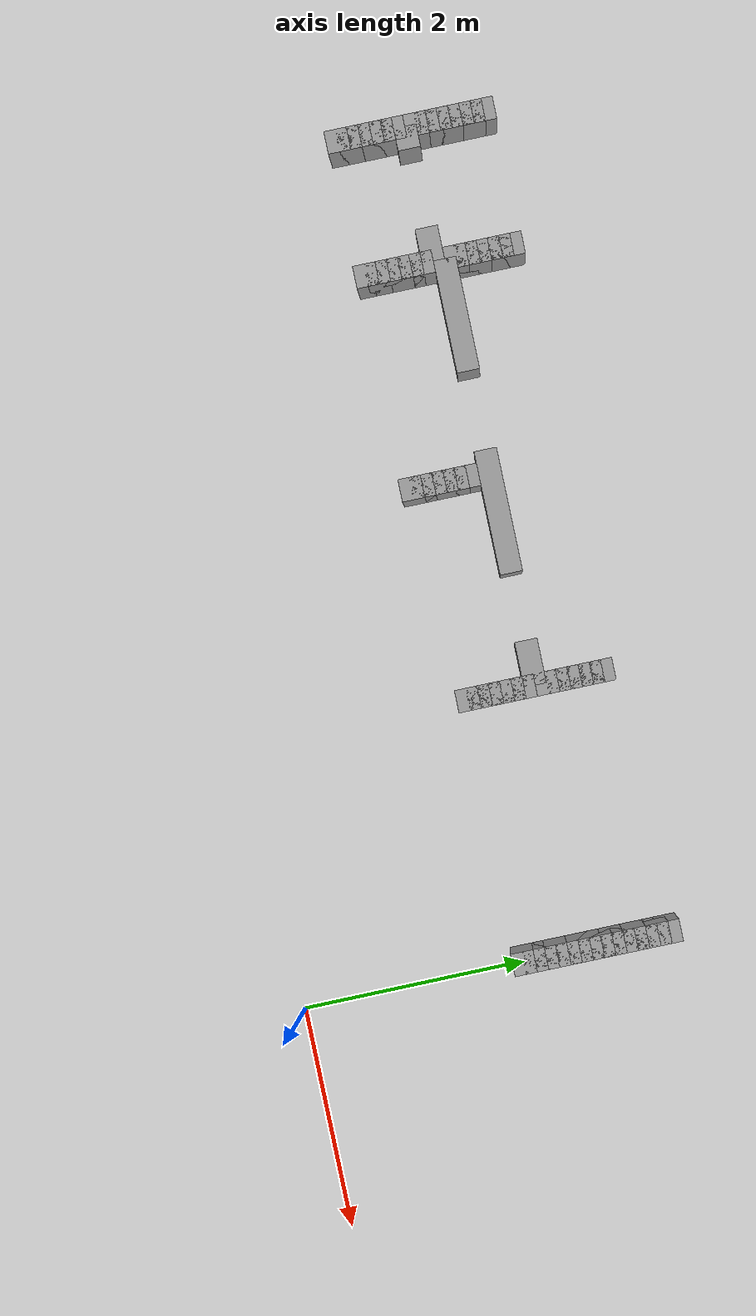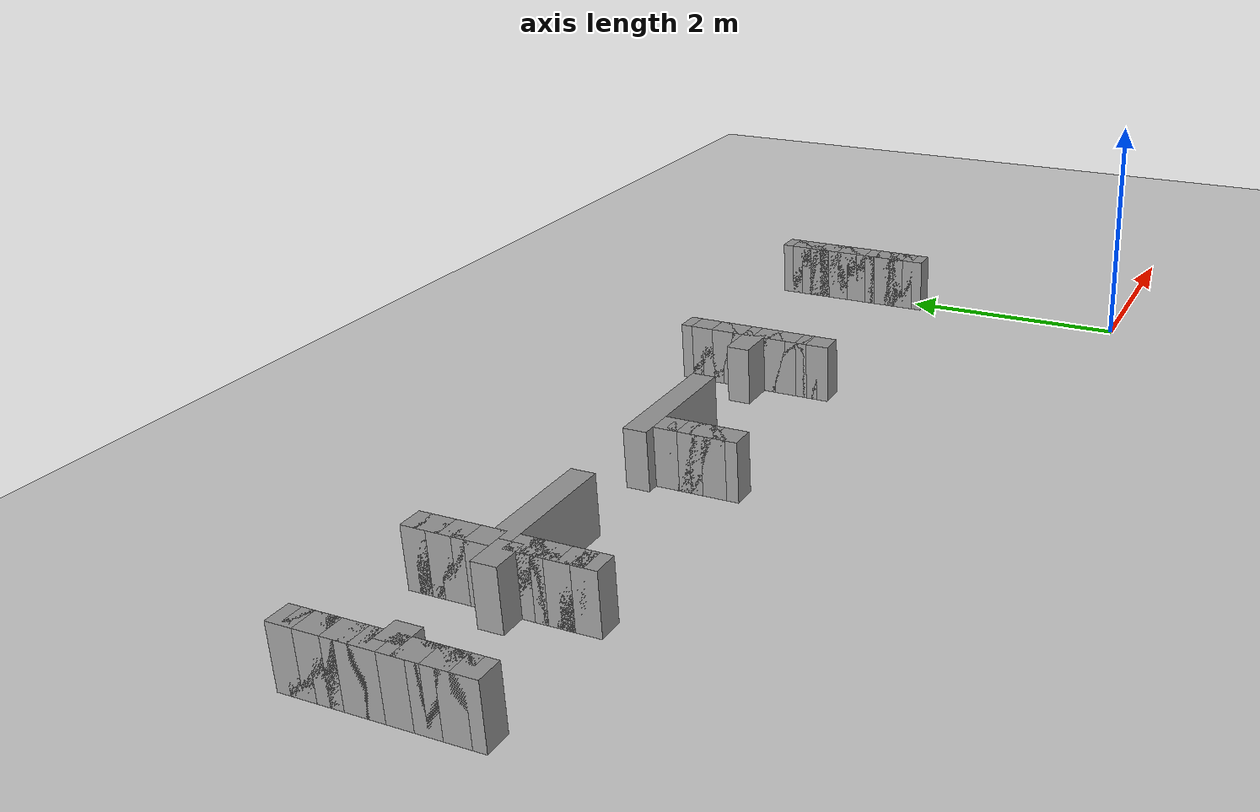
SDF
<sdf version="1.6">
 <world name="GridMap">
  <include><uri>model://sun</uri></include>
  <include><uri>model://ground_plane</uri></include>
  <model name="GridMap">
   <link name="Wall_(43.0,19.0)">
    <collision name="Wall_(43.0,19.0)_Collision">
     <geometry><box><size>0.2 0.2 0.5</size></box></geometry>
     <pose>-4.3 1.9000000000000001 0.25 0 -0 0</pose>
    </collision>
    <inertial>
     <mass>0.5</mass>
     <pose>0 0.01 0 0 0 0</pose>
     <inertia><ixx>0.004</ixx><ixy>0.001</ixy><ixz>0</ixz><iyy>0.006</iyy><iyz>0</iyz><izz>0.007</izz></inertia>
    </inertial>
    <visual name="Wall_(43.0,19.0)_Visual">
     <geometry><box><size>0.2 0.2 0.5</size></box></geometry>
     <pose>-4.3 1.9000000000000001 0.25 0 -0 0</pose>
     <material>
      <script><uri>file://media/materials/scripts/gazebo.material</uri><name>Gazebo/Grey</name></script>
      <ambient>1 1 1 1</ambient>
     </material>
     <meta><layer>0</layer></meta>
    </visual>
   </link>
   <link name="Wall_(62.0,19.0)">
    <collision name="Wall_(62.0,19.0)_Collision">
     <geometry><box><size>0.2 0.2 0.5</size></box></geometry>
     <pose>-6.2 1.9000000000000001 0.25 0 -0 0</pose>
    </collision>
    <inertial>
     <mass>0.5</mass>
     <pose>0 0.01 0 0 0 0</pose>
     <inertia><ixx>0.004</ixx><ixy>0.001</ixy><ixz>0</ixz><iyy>0.006</iyy><iyz>0</iyz><izz>0.007</izz></inertia>
    </inertial>
    <visual name="Wall_(62.0,19.0)_Visual">
     <geometry><box><size>0.2 0.2 0.5</size></box></geometry>
     <pose>-6.2 1.9000000000000001 0.25 0 -0 0</pose>
     <material>
      <script><uri>file://media/materials/scripts/gazebo.material</uri><name>Gazebo/Grey</name></script>
      <ambient>1 1 1 1</ambient>
     </material>
     <meta><layer>0</layer></meta>
    </visual>
   </link>
   <link name="Wall_(74.0,19.0)">
    <collision name="Wall_(74.0,19.0)_Collision">
     <geometry><box><size>0.2 0.2 0.5</size></box></geometry>
     <pose>-7.4 1.9000000000000001 0.25 0 -0 0</pose>
    </collision>
    <inertial>
     <mass>0.5</mass>
     <pose>0 0.01 0 0 0 0</pose>
     <inertia><ixx>0.004</ixx><ixy>0.001</ixy><ixz>0</ixz><iyy>0.006</iyy><iyz>0</iyz><izz>0.007</izz></inertia>
    </inertial>
    <visual name="Wall_(74.0,19.0)_Visual">
     <geometry><box><size>0.2 0.2 0.5</size></box></geometry>
     <pose>-7.4 1.9000000000000001 0.25 0 -0 0</pose>
     <material>
      <script><uri>file://media/materials/scripts/gazebo.material</uri><name>Gazebo/Grey</name></script>
      <ambient>1 1 1 1</ambient>
     </material>
     <meta><layer>0</layer></meta>
    </visual>
   </link>
   <link name="Wall_(0.5,20.0)">
    <collision name="Wall_(0.5,20.0)_Collision">
     <geometry><box><size>0.2 0.2 0.5</size></box></geometry>
     <pose>-0.05 2.0 0.25 0 -0 0</pose>
    </collision>
    <inertial>
     <mass>0.5</mass>
     <pose>0 0.01 0 0 0 0</pose>
     <inertia><ixx>0.004</ixx><ixy>0.001</ixy><ixz>0</ixz><iyy>0.006</iyy><iyz>0</iyz><izz>0.007</izz></inertia>
    </inertial>
    <visual name="Wall_(0.5,20.0)_Visual">
     <geometry><box><size>0.2 0.2 0.5</size></box></geometry>
     <pose>-0.05 2.0 0.25 0 -0 0</pose>
     <material>
      <script><uri>file://media/materials/scripts/gazebo.material</uri><name>Gazebo/Grey</name></script>
      <ambient>1 1 1 1</ambient>
     </material>
     <meta><layer>0</layer></meta>
    </visual>
   </link>
   <link name="Wall_(24.0,20.0)">
    <collision name="Wall_(24.0,20.0)_Collision">
     <geometry><box><size>0.2 0.2 0.5</size></box></geometry>
     <pose>-2.4000000000000004 2.0 0.25 0 -0 0</pose>
    </collision>
    <inertial>
     <mass>0.5</mass>
     <pose>0 0.01 0 0 0 0</pose>
     <inertia><ixx>0.004</ixx><ixy>0.001</ixy><ixz>0</ixz><iyy>0.006</iyy><iyz>0</iyz><izz>0.007</izz></inertia>
    </inertial>
    <visual name="Wall_(24.0,20.0)_Visual">
     <geometry><box><size>0.2 0.2 0.5</size></box></geometry>
     <pose>-2.4000000000000004 2.0 0.25 0 -0 0</pose>
     <material>
      <script><uri>file://media/materials/scripts/gazebo.material</uri><name>Gazebo/Grey</name></script>
      <ambient>1 1 1 1</ambient>
     </material>
     <meta><layer>0</layer></meta>
    </visual>
   </link>
   <link name="Wall_(43.0,20.0)">
    <collision name="Wall_(43.0,20.0)_Collision">
     <geometry><box><size>0.2 0.2 0.5</size></box></geometry>
     <pose>-4.3 2.0 0.25 0 -0 0</pose>
    </collision>
    <inertial>
     <mass>0.5</mass>
     <pose>0 0.01 0 0 0 0</pose>
     <inertia><ixx>0.004</ixx><ixy>0.001</ixy><ixz>0</ixz><iyy>0.006</iyy><iyz>0</iyz><izz>0.007</izz></inertia>
    </inertial>
    <visual name="Wall_(43.0,20.0)_Visual">
     <geometry><box><size>0.2 0.2 0.5</size></box></geometry>
     <pose>-4.3 2.0 0.25 0 -0 0</pose>
     <material>
      <script><uri>file://media/materials/scripts/gazebo.material</uri><name>Gazebo/Grey</name></script>
      <ambient>1 1 1 1</ambient>
     </material>
     <meta><layer>0</layer></meta>
    </visual>
   </link>
   <link name="Wall_(62.0,20.0)">
    <collision name="Wall_(62.0,20.0)_Collision">
     <geometry><box><size>0.2 0.2 0.5</size></box></geometry>
     <pose>-6.2 2.0 0.25 0 -0 0</pose>
    </collision>
    <inertial>
     <mass>0.5</mass>
     <pose>0 0.01 0 0 0 0</pose>
     <inertia><ixx>0.004</ixx><ixy>0.001</ixy><ixz>0</ixz><iyy>0.006</iyy><iyz>0</iyz><izz>0.007</izz></inertia>
    </inertial>
    <visual name="Wall_(62.0,20.0)_Visual">
     <geometry><box><size>0.2 0.2 0.5</size></box></geometry>
     <pose>-6.2 2.0 0.25 0 -0 0</pose>
     <material>
      <script><uri>file://media/materials/scripts/gazebo.material</uri><name>Gazebo/Grey</name></script>
      <ambient>1 1 1 1</ambient>
     </material>
     <meta><layer>0</layer></meta>
    </visual>
   </link>
   <link name="Wall_(74.0,20.0)">
    <collision name="Wall_(74.0,20.0)_Collision">
     <geometry><box><size>0.2 0.2 0.5</size></box></geometry>
     <pose>-7.4 2.0 0.25 0 -0 0</pose>
    </collision>
    <inertial>
     <mass>0.5</mass>
     <pose>0 0.01 0 0 0 0</pose>
     <inertia><ixx>0.004</ixx><ixy>0.001</ixy><ixz>0</ixz><iyy>0.006</iyy><iyz>0</iyz><izz>0.007</izz></inertia>
    </inertial>
    <visual name="Wall_(74.0,20.0)_Visual">
     <geometry><box><size>0.2 0.2 0.5</size></box></geometry>
     <pose>-7.4 2.0 0.25 0 -0 0</pose>
     <material>
      <script><uri>file://media/materials/scripts/gazebo.material</uri><name>Gazebo/Grey</name></script>
      <ambient>1 1 1 1</ambient>
     </material>
     <meta><layer>0</layer></meta>
    </visual>
   </link>
   <link name="Wall_(0.5,21.0)">
    <collision name="Wall_(0.5,21.0)_Collision">
     <geometry><box><size>0.2 0.2 0.5</size></box></geometry>
     <pose>-0.05 2.1 0.25 0 -0 0</pose>
    </collision>
    <inertial>
     <mass>0.5</mass>
     <pose>0 0.01 0 0 0 0</pose>
     <inertia><ixx>0.004</ixx><ixy>0.001</ixy><ixz>0</ixz><iyy>0.006</iyy><iyz>0</iyz><izz>0.007</izz></inertia>
    </inertial>
    <visual name="Wall_(0.5,21.0)_Visual">
     <geometry><box><size>0.2 0.2 0.5</size></box></geometry>
     <pose>-0.05 2.1 0.25 0 -0 0</pose>
     <material>
      <script><uri>file://media/materials/scripts/gazebo.material</uri><name>Gazebo/Grey</name></script>
      <ambient>1 1 1 1</ambient>
     </material>
     <meta><layer>0</layer></meta>
    </visual>
   </link>
   <link name="Wall_(24.0,21.0)">
    <collision name="Wall_(24.0,21.0)_Collision">
     <geometry><box><size>0.2 0.2 0.5</size></box></geometry>
     <pose>-2.4000000000000004 2.1 0.25 0 -0 0</pose>
    </collision>
    <inertial>
     <mass>0.5</mass>
     <pose>0 0.01 0 0 0 0</pose>
     <inertia><ixx>0.004</ixx><ixy>0.001</ixy><ixz>0</ixz><iyy>0.006</iyy><iyz>0</iyz><izz>0.007</izz></inertia>
    </inertial>
    <visual name="Wall_(24.0,21.0)_Visual">
     <geometry><box><size>0.2 0.2 0.5</size></box></geometry>
     <pose>-2.4000000000000004 2.1 0.25 0 -0 0</pose>
     <material>
      <script><uri>file://media/materials/scripts/gazebo.material</uri><name>Gazebo/Grey</name></script>
      <ambient>1 1 1 1</ambient>
     </material>
     <meta><layer>0</layer></meta>
    </visual>
   </link>
   <link name="Wall_(43.0,21.0)">
    <collision name="Wall_(43.0,21.0)_Collision">
     <geometry><box><size>0.2 0.2 0.5</size></box></geometry>
     <pose>-4.3 2.1 0.25 0 -0 0</pose>
    </collision>
    <inertial>
     <mass>0.5</mass>
     <pose>0 0.01 0 0 0 0</pose>
     <inertia><ixx>0.004</ixx><ixy>0.001</ixy><ixz>0</ixz><iyy>0.006</iyy><iyz>0</iyz><izz>0.007</izz></inertia>
    </inertial>
    <visual name="Wall_(43.0,21.0)_Visual">
     <geometry><box><size>0.2 0.2 0.5</size></box></geometry>
     <pose>-4.3 2.1 0.25 0 -0 0</pose>
     <material>
      <script><uri>file://media/materials/scripts/gazebo.material</uri><name>Gazebo/Grey</name></script>
      <ambient>1 1 1 1</ambient>
     </material>
     <meta><layer>0</layer></meta>
    </visual>
   </link>
   <link name="Wall_(62.0,21.0)">
    <collision name="Wall_(62.0,21.0)_Collision">
     <geometry><box><size>0.2 0.2 0.5</size></box></geometry>
     <pose>-6.2 2.1 0.25 0 -0 0</pose>
    </collision>
    <inertial>
     <mass>0.5</mass>
     <pose>0 0.01 0 0 0 0</pose>
     <inertia><ixx>0.004</ixx><ixy>0.001</ixy><ixz>0</ixz><iyy>0.006</iyy><iyz>0</iyz><izz>0.007</izz></inertia>
    </inertial>
    <visual name="Wall_(62.0,21.0)_Visual">
     <geometry><box><size>0.2 0.2 0.5</size></box></geometry>
     <pose>-6.2 2.1 0.25 0 -0 0</pose>
     <material>
      <script><uri>file://media/materials/scripts/gazebo.material</uri><name>Gazebo/Grey</name></script>
      <ambient>1 1 1 1</ambient>
     </material>
     <meta><layer>0</layer></meta>
    </visual>
   </link>
   <link name="Wall_(74.0,21.0)">
    <collision name="Wall_(74.0,21.0)_Collision">
     <geometry><box><size>0.2 0.2 0.5</size></box></geometry>
     <pose>-7.4 2.1 0.25 0 -0 0</pose>
    </collision>
    <inertial>
     <mass>0.5</mass>
     <pose>0 0.01 0 0 0 0</pose>
     <inertia><ixx>0.004</ixx><ixy>0.001</ixy><ixz>0</ixz><iyy>0.006</iyy><iyz>0</iyz><izz>0.007</izz></inertia>
    </inertial>
    <visual name="Wall_(74.0,21.0)_Visual">
     <geometry><box><size>0.2 0.2 0.5</size></box></geometry>
     <pose>-7.4 2.1 0.25 0 -0 0</pose>
     <material>
      <script><uri>file://media/materials/scripts/gazebo.material</uri><name>Gazebo/Grey</name></script>
      <ambient>1 1 1 1</ambient>
     </material>
     <meta><layer>0</layer></meta>
    </visual>
   </link>
   <link name="Wall_(0.5,22.0)">
    <collision name="Wall_(0.5,22.0)_Collision">
     <geometry><box><size>0.2 0.2 0.5</size></box></geometry>
     <pose>-0.05 2.2 0.25 0 -0 0</pose>
    </collision>
    <inertial>
     <mass>0.5</mass>
     <pose>0 0.01 0 0 0 0</pose>
     <inertia><ixx>0.004</ixx><ixy>0.001</ixy><ixz>0</ixz><iyy>0.006</iyy><iyz>0</iyz><izz>0.007</izz></inertia>
    </inertial>
    <visual name="Wall_(0.5,22.0)_Visual">
     <geometry><box><size>0.2 0.2 0.5</size></box></geometry>
     <pose>-0.05 2.2 0.25 0 -0 0</pose>
     <material>
      <script><uri>file://media/materials/scripts/gazebo.material</uri><name>Gazebo/Grey</name></script>
      <ambient>1 1 1 1</ambient>
     </material>
     <meta><layer>0</layer></meta>
    </visual>
   </link>
   <link name="Wall_(24.0,22.0)">
    <collision name="Wall_(24.0,22.0)_Collision">
     <geometry><box><size>0.2 0.2 0.5</size></box></geometry>
     <pose>-2.4000000000000004 2.2 0.25 0 -0 0</pose>
    </collision>
    <inertial>
     <mass>0.5</mass>
     <pose>0 0.01 0 0 0 0</pose>
     <inertia><ixx>0.004</ixx><ixy>0.001</ixy><ixz>0</ixz><iyy>0.006</iyy><iyz>0</iyz><izz>0.007</izz></inertia>
    </inertial>
    <visual name="Wall_(24.0,22.0)_Visual">
     <geometry><box><size>0.2 0.2 0.5</size></box></geometry>
     <pose>-2.4000000000000004 2.2 0.25 0 -0 0</pose>
     <material>
      <script><uri>file://media/materials/scripts/gazebo.material</uri><name>Gazebo/Grey</name></script>
      <ambient>1 1 1 1</ambient>
     </material>
     <meta><layer>0</layer></meta>
    </visual>
   </link>
   <link name="Wall_(43.0,22.0)">
    <collision name="Wall_(43.0,22.0)_Collision">
     <geometry><box><size>0.2 0.2 0.5</size></box></geometry>
     <pose>-4.3 2.2 0.25 0 -0 0</pose>
    </collision>
    <inertial>
     <mass>0.5</mass>
     <pose>0 0.01 0 0 0 0</pose>
     <inertia><ixx>0.004</ixx><ixy>0.001</ixy><ixz>0</ixz><iyy>0.006</iyy><iyz>0</iyz><izz>0.007</izz></inertia>
    </inertial>
    <visual name="Wall_(43.0,22.0)_Visual">
     <geometry><box><size>0.2 0.2 0.5</size></box></geometry>
     <pose>-4.3 2.2 0.25 0 -0 0</pose>
     <material>
      <script><uri>file://media/materials/scripts/gazebo.material</uri><name>Gazebo/Grey</name></script>
      <ambient>1 1 1 1</ambient>
     </material>
     <meta><layer>0</layer></meta>
    </visual>
   </link>
   <link name="Wall_(62.0,22.0)">
    <collision name="Wall_(62.0,22.0)_Collision">
     <geometry><box><size>0.2 0.2 0.5</size></box></geometry>
     <pose>-6.2 2.2 0.25 0 -0 0</pose>
    </collision>
    <inertial>
     <mass>0.5</mass>
     <pose>0 0.01 0 0 0 0</pose>
     <inertia><ixx>0.004</ixx><ixy>0.001</ixy><ixz>0</ixz><iyy>0.006</iyy><iyz>0</iyz><izz>0.007</izz></inertia>
    </inertial>
    <visual name="Wall_(62.0,22.0)_Visual">
     <geometry><box><size>0.2 0.2 0.5</size></box></geometry>
     <pose>-6.2 2.2 0.25 0 -0 0</pose>
     <material>
      <script><uri>file://media/materials/scripts/gazebo.material</uri><name>Gazebo/Grey</name></script>
      <ambient>1 1 1 1</ambient>
     </material>
     <meta><layer>0</layer></meta>
    </visual>
   </link>
   <link name="Wall_(74.0,22.0)">
    <collision name="Wall_(74.0,22.0)_Collision">
     <geometry><box><size>0.2 0.2 0.5</size></box></geometry>
     <pose>-7.4 2.2 0.25 0 -0 0</pose>
    </collision>
    <inertial>
     <mass>0.5</mass>
     <pose>0 0.01 0 0 0 0</pose>
     <inertia><ixx>0.004</ixx><ixy>0.001</ixy><ixz>0</ixz><iyy>0.006</iyy><iyz>0</iyz><izz>0.007</izz></inertia>
    </inertial>
    <visual name="Wall_(74.0,22.0)_Visual">
     <geometry><box><size>0.2 0.2 0.5</size></box></geometry>
     <pose>-7.4 2.2 0.25 0 -0 0</pose>
     <material>
      <script><uri>file://media/materials/scripts/gazebo.material</uri><name>Gazebo/Grey</name></script>
      <ambient>1 1 1 1</ambient>
     </material>
     <meta><layer>0</layer></meta>
    </visual>
   </link>
   <link name="Wall_(0.5,23.0)">
    <collision name="Wall_(0.5,23.0)_Collision">
     <geometry><box><size>0.2 0.2 0.5</size></box></geometry>
     <pose>-0.05 2.3000000000000003 0.25 0 -0 0</pose>
    </collision>
    <inertial>
     <mass>0.5</mass>
     <pose>0 0.01 0 0 0 0</pose>
     <inertia><ixx>0.004</ixx><ixy>0.001</ixy><ixz>0</ixz><iyy>0.006</iyy><iyz>0</iyz><izz>0.007</izz></inertia>
    </inertial>
    <visual name="Wall_(0.5,23.0)_Visual">
     <geometry><box><size>0.2 0.2 0.5</size></box></geometry>
     <pose>-0.05 2.3000000000000003 0.25 0 -0 0</pose>
     <material>
      <script><uri>file://media/materials/scripts/gazebo.material</uri><name>Gazebo/Grey</name></script>
      <ambient>1 1 1 1</ambient>
     </material>
     <meta><layer>0</layer></meta>
    </visual>
   </link>
   <link name="Wall_(24.0,23.0)">
    <collision name="Wall_(24.0,23.0)_Collision">
     <geometry><box><size>0.2 0.2 0.5</size></box></geometry>
     <pose>-2.4000000000000004 2.3000000000000003 0.25 0 -0 0</pose>
    </collision>
    <inertial>
     <mass>0.5</mass>
     <pose>0 0.01 0 0 0 0</pose>
     <inertia><ixx>0.004</ixx><ixy>0.001</ixy><ixz>0</ixz><iyy>0.006</iyy><iyz>0</iyz><izz>0.007</izz></inertia>
    </inertial>
    <visual name="Wall_(24.0,23.0)_Visual">
     <geometry><box><size>0.2 0.2 0.5</size></box></geometry>
     <pose>-2.4000000000000004 2.3000000000000003 0.25 0 -0 0</pose>
     <material>
      <script><uri>file://media/materials/scripts/gazebo.material</uri><name>Gazebo/Grey</name></script>
      <ambient>1 1 1 1</ambient>
     </material>
     <meta><layer>0</layer></meta>
    </visual>
   </link>
   <link name="Wall_(43.0,23.0)">
    <collision name="Wall_(43.0,23.0)_Collision">
     <geometry><box><size>0.2 0.2 0.5</size></box></geometry>
     <pose>-4.3 2.3000000000000003 0.25 0 -0 0</pose>
    </collision>
    <inertial>
     <mass>0.5</mass>
     <pose>0 0.01 0 0 0 0</pose>
     <inertia><ixx>0.004</ixx><ixy>0.001</ixy><ixz>0</ixz><iyy>0.006</iyy><iyz>0</iyz><izz>0.007</izz></inertia>
    </inertial>
    <visual name="Wall_(43.0,23.0)_Visual">
     <geometry><box><size>0.2 0.2 0.5</size></box></geometry>
     <pose>-4.3 2.3000000000000003 0.25 0 -0 0</pose>
     <material>
      <script><uri>file://media/materials/scripts/gazebo.material</uri><name>Gazebo/Grey</name></script>
      <ambient>1 1 1 1</ambient>
     </material>
     <meta><layer>0</layer></meta>
    </visual>
   </link>
   <link name="Wall_(62.0,23.0)">
    <collision name="Wall_(62.0,23.0)_Collision">
     <geometry><box><size>0.2 0.2 0.5</size></box></geometry>
     <pose>-6.2 2.3000000000000003 0.25 0 -0 0</pose>
    </collision>
    <inertial>
     <mass>0.5</mass>
     <pose>0 0.01 0 0 0 0</pose>
     <inertia><ixx>0.004</ixx><ixy>0.001</ixy><ixz>0</ixz><iyy>0.006</iyy><iyz>0</iyz><izz>0.007</izz></inertia>
    </inertial>
    <visual name="Wall_(62.0,23.0)_Visual">
     <geometry><box><size>0.2 0.2 0.5</size></box></geometry>
     <pose>-6.2 2.3000000000000003 0.25 0 -0 0</pose>
     <material>
      <script><uri>file://media/materials/scripts/gazebo.material</uri><name>Gazebo/Grey</name></script>
      <ambient>1 1 1 1</ambient>
     </material>
     <meta><layer>0</layer></meta>
    </visual>
   </link>
   <link name="Wall_(74.0,23.0)">
    <collision name="Wall_(74.0,23.0)_Collision">
     <geometry><box><size>0.2 0.2 0.5</size></box></geometry>
     <pose>-7.4 2.3000000000000003 0.25 0 -0 0</pose>
    </collision>
    <inertial>
     <mass>0.5</mass>
     <pose>0 0.01 0 0 0 0</pose>
     <inertia><ixx>0.004</ixx><ixy>0.001</ixy><ixz>0</ixz><iyy>0.006</iyy><iyz>0</iyz><izz>0.007</izz></inertia>
    </inertial>
    <visual name="Wall_(74.0,23.0)_Visual">
     <geometry><box><size>0.2 0.2 0.5</size></box></geometry>
     <pose>-7.4 2.3000000000000003 0.25 0 -0 0</pose>
     <material>
      <script><uri>file://media/materials/scripts/gazebo.material</uri><name>Gazebo/Grey</name></script>
      <ambient>1 1 1 1</ambient>
     </material>
     <meta><layer>0</layer></meta>
    </visual>
   </link>
   <link name="Wall_(0.5,24.0)">
    <collision name="Wall_(0.5,24.0)_Collision">
     <geometry><box><size>0.2 0.2 0.5</size></box></geometry>
     <pose>-0.05 2.4000000000000004 0.25 0 -0 0</pose>
    </collision>
    <inertial>
     <mass>0.5</mass>
     <pose>0 0.01 0 0 0 0</pose>
     <inertia><ixx>0.004</ixx><ixy>0.001</ixy><ixz>0</ixz><iyy>0.006</iyy><iyz>0</iyz><izz>0.007</izz></inertia>
    </inertial>
    <visual name="Wall_(0.5,24.0)_Visual">
     <geometry><box><size>0.2 0.2 0.5</size></box></geometry>
     <pose>-0.05 2.4000000000000004 0.25 0 -0 0</pose>
     <material>
      <script><uri>file://media/materials/scripts/gazebo.material</uri><name>Gazebo/Grey</name></script>
      <ambient>1 1 1 1</ambient>
     </material>
     <meta><layer>0</layer></meta>
    </visual>
   </link>
   <link name="Wall_(24.0,24.0)">
    <collision name="Wall_(24.0,24.0)_Collision">
     <geometry><box><size>0.2 0.2 0.5</size></box></geometry>
     <pose>-2.4000000000000004 2.4000000000000004 0.25 0 -0 0</pose>
    </collision>
    <inertial>
     <mass>0.5</mass>
     <pose>0 0.01 0 0 0 0</pose>
     <inertia><ixx>0.004</ixx><ixy>0.001</ixy><ixz>0</ixz><iyy>0.006</iyy><iyz>0</iyz><izz>0.007</izz></inertia>
    </inertial>
    <visual name="Wall_(24.0,24.0)_Visual">
     <geometry><box><size>0.2 0.2 0.5</size></box></geometry>
     <pose>-2.4000000000000004 2.4000000000000004 0.25 0 -0 0</pose>
     <material>
      <script><uri>file://media/materials/scripts/gazebo.material</uri><name>Gazebo/Grey</name></script>
      <ambient>1 1 1 1</ambient>
     </material>
     <meta><layer>0</layer></meta>
    </visual>
   </link>
   <link name="Wall_(43.0,24.0)">
    <collision name="Wall_(43.0,24.0)_Collision">
     <geometry><box><size>0.2 0.2 0.5</size></box></geometry>
     <pose>-4.3 2.4000000000000004 0.25 0 -0 0</pose>
    </collision>
    <inertial>
     <mass>0.5</mass>
     <pose>0 0.01 0 0 0 0</pose>
     <inertia><ixx>0.004</ixx><ixy>0.001</ixy><ixz>0</ixz><iyy>0.006</iyy><iyz>0</iyz><izz>0.007</izz></inertia>
    </inertial>
    <visual name="Wall_(43.0,24.0)_Visual">
     <geometry><box><size>0.2 0.2 0.5</size></box></geometry>
     <pose>-4.3 2.4000000000000004 0.25 0 -0 0</pose>
     <material>
      <script><uri>file://media/materials/scripts/gazebo.material</uri><name>Gazebo/Grey</name></script>
      <ambient>1 1 1 1</ambient>
     </material>
     <meta><layer>0</layer></meta>
    </visual>
   </link>
   <link name="Wall_(62.0,24.0)">
    <collision name="Wall_(62.0,24.0)_Collision">
     <geometry><box><size>0.2 0.2 0.5</size></box></geometry>
     <pose>-6.2 2.4000000000000004 0.25 0 -0 0</pose>
    </collision>
    <inertial>
     <mass>0.5</mass>
     <pose>0 0.01 0 0 0 0</pose>
     <inertia><ixx>0.004</ixx><ixy>0.001</ixy><ixz>0</ixz><iyy>0.006</iyy><iyz>0</iyz><izz>0.007</izz></inertia>
    </inertial>
    <visual name="Wall_(62.0,24.0)_Visual">
     <geometry><box><size>0.2 0.2 0.5</size></box></geometry>
     <pose>-6.2 2.4000000000000004 0.25 0 -0 0</pose>
     <material>
      <script><uri>file://media/materials/scripts/gazebo.material</uri><name>Gazebo/Grey</name></script>
      <ambient>1 1 1 1</ambient>
     </material>
     <meta><layer>0</layer></meta>
    </visual>
   </link>
   <link name="Wall_(74.0,24.0)">
    <collision name="Wall_(74.0,24.0)_Collision">
     <geometry><box><size>0.2 0.2 0.5</size></box></geometry>
     <pose>-7.4 2.4000000000000004 0.25 0 -0 0</pose>
    </collision>
    <inertial>
     <mass>0.5</mass>
     <pose>0 0.01 0 0 0 0</pose>
     <inertia><ixx>0.004</ixx><ixy>0.001</ixy><ixz>0</ixz><iyy>0.006</iyy><iyz>0</iyz><izz>0.007</izz></inertia>
    </inertial>
    <visual name="Wall_(74.0,24.0)_Visual">
     <geometry><box><size>0.2 0.2 0.5</size></box></geometry>
     <pose>-7.4 2.4000000000000004 0.25 0 -0 0</pose>
     <material>
      <script><uri>file://media/materials/scripts/gazebo.material</uri><name>Gazebo/Grey</name></script>
      <ambient>1 1 1 1</ambient>
     </material>
     <meta><layer>0</layer></meta>
    </visual>
   </link>
   <link name="Wall_(0.5,25.0)">
    <collision name="Wall_(0.5,25.0)_Collision">
     <geometry><box><size>0.2 0.2 0.5</size></box></geometry>
     <pose>-0.05 2.5 0.25 0 -0 0</pose>
    </collision>
    <inertial>
     <mass>0.5</mass>
     <pose>0 0.01 0 0 0 0</pose>
     <inertia><ixx>0.004</ixx><ixy>0.001</ixy><ixz>0</ixz><iyy>0.006</iyy><iyz>0</iyz><izz>0.007</izz></inertia>
    </inertial>
    <visual name="Wall_(0.5,25.0)_Visual">
     <geometry><box><size>0.2 0.2 0.5</size></box></geometry>
     <pose>-0.05 2.5 0.25 0 -0 0</pose>
     <material>
      <script><uri>file://media/materials/scripts/gazebo.material</uri><name>Gazebo/Grey</name></script>
      <ambient>1 1 1 1</ambient>
     </material>
     <meta><layer>0</layer></meta>
    </visual>
   </link>
   <link name="Wall_(24.0,25.0)">
    <collision name="Wall_(24.0,25.0)_Collision">
     <geometry><box><size>0.2 0.2 0.5</size></box></geometry>
     <pose>-2.4000000000000004 2.5 0.25 0 -0 0</pose>
    </collision>
    <inertial>
     <mass>0.5</mass>
     <pose>0 0.01 0 0 0 0</pose>
     <inertia><ixx>0.004</ixx><ixy>0.001</ixy><ixz>0</ixz><iyy>0.006</iyy><iyz>0</iyz><izz>0.007</izz></inertia>
    </inertial>
    <visual name="Wall_(24.0,25.0)_Visual">
     <geometry><box><size>0.2 0.2 0.5</size></box></geometry>
     <pose>-2.4000000000000004 2.5 0.25 0 -0 0</pose>
     <material>
      <script><uri>file://media/materials/scripts/gazebo.material</uri><name>Gazebo/Grey</name></script>
      <ambient>1 1 1 1</ambient>
     </material>
     <meta><layer>0</layer></meta>
    </visual>
   </link>
   <link name="Wall_(63.5,25.0)">
    <collision name="Wall_(63.5,25.0)_Collision">
     <geometry><box><size>0.30000000000000004 0.2 0.5</size></box></geometry>
     <pose>-6.3500000000000005 2.5 0.25 0 -0 0</pose>
    </collision>
    <inertial>
     <mass>0.5</mass>
     <pose>0 0.01 0 0 0 0</pose>
     <inertia><ixx>0.004</ixx><ixy>0.001</ixy><ixz>0</ixz><iyy>0.006</iyy><iyz>0</iyz><izz>0.007</izz></inertia>
    </inertial>
    <visual name="Wall_(63.5,25.0)_Visual">
     <geometry><box><size>0.30000000000000004 0.2 0.5</size></box></geometry>
     <pose>-6.3500000000000005 2.5 0.25 0 -0 0</pose>
     <material>
      <script><uri>file://media/materials/scripts/gazebo.material</uri><name>Gazebo/Grey</name></script>
      <ambient>1 1 1 1</ambient>
     </material>
     <meta><layer>0</layer></meta>
    </visual>
   </link>
   <link name="Wall_(73.0,25.0)">
    <collision name="Wall_(73.0,25.0)_Collision">
     <geometry><box><size>0.2 0.2 0.5</size></box></geometry>
     <pose>-7.300000000000001 2.5 0.25 0 -0 0</pose>
    </collision>
    <inertial>
     <mass>0.5</mass>
     <pose>0 0.01 0 0 0 0</pose>
     <inertia><ixx>0.004</ixx><ixy>0.001</ixy><ixz>0</ixz><iyy>0.006</iyy><iyz>0</iyz><izz>0.007</izz></inertia>
    </inertial>
    <visual name="Wall_(73.0,25.0)_Visual">
     <geometry><box><size>0.2 0.2 0.5</size></box></geometry>
     <pose>-7.300000000000001 2.5 0.25 0 -0 0</pose>
     <material>
      <script><uri>file://media/materials/scripts/gazebo.material</uri><name>Gazebo/Grey</name></script>
      <ambient>1 1 1 1</ambient>
     </material>
     <meta><layer>0</layer></meta>
    </visual>
   </link>
   <link name="Wall_(0.5,26.0)">
    <collision name="Wall_(0.5,26.0)_Collision">
     <geometry><box><size>0.2 0.2 0.5</size></box></geometry>
     <pose>-0.05 2.6 0.25 0 -0 0</pose>
    </collision>
    <inertial>
     <mass>0.5</mass>
     <pose>0 0.01 0 0 0 0</pose>
     <inertia><ixx>0.004</ixx><ixy>0.001</ixy><ixz>0</ixz><iyy>0.006</iyy><iyz>0</iyz><izz>0.007</izz></inertia>
    </inertial>
    <visual name="Wall_(0.5,26.0)_Visual">
     <geometry><box><size>0.2 0.2 0.5</size></box></geometry>
     <pose>-0.05 2.6 0.25 0 -0 0</pose>
     <material>
      <script><uri>file://media/materials/scripts/gazebo.material</uri><name>Gazebo/Grey</name></script>
      <ambient>1 1 1 1</ambient>
     </material>
     <meta><layer>0</layer></meta>
    </visual>
   </link>
   <link name="Wall_(26.0,26.0)">
    <collision name="Wall_(26.0,26.0)_Collision">
     <geometry><box><size>0.4 0.2 0.5</size></box></geometry>
     <pose>-2.6 2.6 0.25 0 -0 0</pose>
    </collision>
    <inertial>
     <mass>0.5</mass>
     <pose>0 0.01 0 0 0 0</pose>
     <inertia><ixx>0.004</ixx><ixy>0.001</ixy><ixz>0</ixz><iyy>0.006</iyy><iyz>0</iyz><izz>0.007</izz></inertia>
    </inertial>
    <visual name="Wall_(26.0,26.0)_Visual">
     <geometry><box><size>0.4 0.2 0.5</size></box></geometry>
     <pose>-2.6 2.6 0.25 0 -0 0</pose>
     <material>
      <script><uri>file://media/materials/scripts/gazebo.material</uri><name>Gazebo/Grey</name></script>
      <ambient>1 1 1 1</ambient>
     </material>
     <meta><layer>0</layer></meta>
    </visual>
   </link>
   <link name="Wall_(39.5,26.0)">
    <collision name="Wall_(39.5,26.0)_Collision">
     <geometry><box><size>1.1 0.2 0.5</size></box></geometry>
     <pose>-3.95 2.6 0.25 0 -0 0</pose>
    </collision>
    <inertial>
     <mass>0.5</mass>
     <pose>0 0.01 0 0 0 0</pose>
     <inertia><ixx>0.004</ixx><ixy>0.001</ixy><ixz>0</ixz><iyy>0.006</iyy><iyz>0</iyz><izz>0.007</izz></inertia>
    </inertial>
    <visual name="Wall_(39.5,26.0)_Visual">
     <geometry><box><size>1.1 0.2 0.5</size></box></geometry>
     <pose>-3.95 2.6 0.25 0 -0 0</pose>
     <material>
      <script><uri>file://media/materials/scripts/gazebo.material</uri><name>Gazebo/Grey</name></script>
      <ambient>1 1 1 1</ambient>
     </material>
     <meta><layer>0</layer></meta>
    </visual>
   </link>
   <link name="Wall_(57.0,26.0)">
    <collision name="Wall_(57.0,26.0)_Collision">
     <geometry><box><size>1.0 0.2 0.5</size></box></geometry>
     <pose>-5.7 2.6 0.25 0 -0 0</pose>
    </collision>
    <inertial>
     <mass>0.5</mass>
     <pose>0 0.01 0 0 0 0</pose>
     <inertia><ixx>0.004</ixx><ixy>0.001</ixy><ixz>0</ixz><iyy>0.006</iyy><iyz>0</iyz><izz>0.007</izz></inertia>
    </inertial>
    <visual name="Wall_(57.0,26.0)_Visual">
     <geometry><box><size>1.0 0.2 0.5</size></box></geometry>
     <pose>-5.7 2.6 0.25 0 -0 0</pose>
     <material>
      <script><uri>file://media/materials/scripts/gazebo.material</uri><name>Gazebo/Grey</name></script>
      <ambient>1 1 1 1</ambient>
     </material>
     <meta><layer>0</layer></meta>
    </visual>
   </link>
   <link name="Wall_(74.0,26.0)">
    <collision name="Wall_(74.0,26.0)_Collision">
     <geometry><box><size>0.2 0.2 0.5</size></box></geometry>
     <pose>-7.4 2.6 0.25 0 -0 0</pose>
    </collision>
    <inertial>
     <mass>0.5</mass>
     <pose>0 0.01 0 0 0 0</pose>
     <inertia><ixx>0.004</ixx><ixy>0.001</ixy><ixz>0</ixz><iyy>0.006</iyy><iyz>0</iyz><izz>0.007</izz></inertia>
    </inertial>
    <visual name="Wall_(74.0,26.0)_Visual">
     <geometry><box><size>0.2 0.2 0.5</size></box></geometry>
     <pose>-7.4 2.6 0.25 0 -0 0</pose>
     <material>
      <script><uri>file://media/materials/scripts/gazebo.material</uri><name>Gazebo/Grey</name></script>
      <ambient>1 1 1 1</ambient>
     </material>
     <meta><layer>0</layer></meta>
    </visual>
   </link>
   <link name="Wall_(0.5,27.0)">
    <collision name="Wall_(0.5,27.0)_Collision">
     <geometry><box><size>0.2 0.2 0.5</size></box></geometry>
     <pose>-0.05 2.7 0.25 0 -0 0</pose>
    </collision>
    <inertial>
     <mass>0.5</mass>
     <pose>0 0.01 0 0 0 0</pose>
     <inertia><ixx>0.004</ixx><ixy>0.001</ixy><ixz>0</ixz><iyy>0.006</iyy><iyz>0</iyz><izz>0.007</izz></inertia>
    </inertial>
    <visual name="Wall_(0.5,27.0)_Visual">
     <geometry><box><size>0.2 0.2 0.5</size></box></geometry>
     <pose>-0.05 2.7 0.25 0 -0 0</pose>
     <material>
      <script><uri>file://media/materials/scripts/gazebo.material</uri><name>Gazebo/Grey</name></script>
      <ambient>1 1 1 1</ambient>
     </material>
     <meta><layer>0</layer></meta>
    </visual>
   </link>
   <link name="Wall_(24.0,27.0)">
    <collision name="Wall_(24.0,27.0)_Collision">
     <geometry><box><size>0.2 0.2 0.5</size></box></geometry>
     <pose>-2.4000000000000004 2.7 0.25 0 -0 0</pose>
    </collision>
    <inertial>
     <mass>0.5</mass>
     <pose>0 0.01 0 0 0 0</pose>
     <inertia><ixx>0.004</ixx><ixy>0.001</ixy><ixz>0</ixz><iyy>0.006</iyy><iyz>0</iyz><izz>0.007</izz></inertia>
    </inertial>
    <visual name="Wall_(24.0,27.0)_Visual">
     <geometry><box><size>0.2 0.2 0.5</size></box></geometry>
     <pose>-2.4000000000000004 2.7 0.25 0 -0 0</pose>
     <material>
      <script><uri>file://media/materials/scripts/gazebo.material</uri><name>Gazebo/Grey</name></script>
      <ambient>1 1 1 1</ambient>
     </material>
     <meta><layer>0</layer></meta>
    </visual>
   </link>
   <link name="Wall_(62.0,27.0)">
    <collision name="Wall_(62.0,27.0)_Collision">
     <geometry><box><size>0.2 0.2 0.5</size></box></geometry>
     <pose>-6.2 2.7 0.25 0 -0 0</pose>
    </collision>
    <inertial>
     <mass>0.5</mass>
     <pose>0 0.01 0 0 0 0</pose>
     <inertia><ixx>0.004</ixx><ixy>0.001</ixy><ixz>0</ixz><iyy>0.006</iyy><iyz>0</iyz><izz>0.007</izz></inertia>
    </inertial>
    <visual name="Wall_(62.0,27.0)_Visual">
     <geometry><box><size>0.2 0.2 0.5</size></box></geometry>
     <pose>-6.2 2.7 0.25 0 -0 0</pose>
     <material>
      <script><uri>file://media/materials/scripts/gazebo.material</uri><name>Gazebo/Grey</name></script>
      <ambient>1 1 1 1</ambient>
     </material>
     <meta><layer>0</layer></meta>
    </visual>
   </link>
   <link name="Wall_(74.0,27.0)">
    <collision name="Wall_(74.0,27.0)_Collision">
     <geometry><box><size>0.2 0.2 0.5</size></box></geometry>
     <pose>-7.4 2.7 0.25 0 -0 0</pose>
    </collision>
    <inertial>
     <mass>0.5</mass>
     <pose>0 0.01 0 0 0 0</pose>
     <inertia><ixx>0.004</ixx><ixy>0.001</ixy><ixz>0</ixz><iyy>0.006</iyy><iyz>0</iyz><izz>0.007</izz></inertia>
    </inertial>
    <visual name="Wall_(74.0,27.0)_Visual">
     <geometry><box><size>0.2 0.2 0.5</size></box></geometry>
     <pose>-7.4 2.7 0.25 0 -0 0</pose>
     <material>
      <script><uri>file://media/materials/scripts/gazebo.material</uri><name>Gazebo/Grey</name></script>
      <ambient>1 1 1 1</ambient>
     </material>
     <meta><layer>0</layer></meta>
    </visual>
   </link>
   <link name="Wall_(0.5,28.0)">
    <collision name="Wall_(0.5,28.0)_Collision">
     <geometry><box><size>0.2 0.2 0.5</size></box></geometry>
     <pose>-0.05 2.8000000000000003 0.25 0 -0 0</pose>
    </collision>
    <inertial>
     <mass>0.5</mass>
     <pose>0 0.01 0 0 0 0</pose>
     <inertia><ixx>0.004</ixx><ixy>0.001</ixy><ixz>0</ixz><iyy>0.006</iyy><iyz>0</iyz><izz>0.007</izz></inertia>
    </inertial>
    <visual name="Wall_(0.5,28.0)_Visual">
     <geometry><box><size>0.2 0.2 0.5</size></box></geometry>
     <pose>-0.05 2.8000000000000003 0.25 0 -0 0</pose>
     <material>
      <script><uri>file://media/materials/scripts/gazebo.material</uri><name>Gazebo/Grey</name></script>
      <ambient>1 1 1 1</ambient>
     </material>
     <meta><layer>0</layer></meta>
    </visual>
   </link>
   <link name="Wall_(24.0,28.0)">
    <collision name="Wall_(24.0,28.0)_Collision">
     <geometry><box><size>0.2 0.2 0.5</size></box></geometry>
     <pose>-2.4000000000000004 2.8000000000000003 0.25 0 -0 0</pose>
    </collision>
    <inertial>
     <mass>0.5</mass>
     <pose>0 0.01 0 0 0 0</pose>
     <inertia><ixx>0.004</ixx><ixy>0.001</ixy><ixz>0</ixz><iyy>0.006</iyy><iyz>0</iyz><izz>0.007</izz></inertia>
    </inertial>
    <visual name="Wall_(24.0,28.0)_Visual">
     <geometry><box><size>0.2 0.2 0.5</size></box></geometry>
     <pose>-2.4000000000000004 2.8000000000000003 0.25 0 -0 0</pose>
     <material>
      <script><uri>file://media/materials/scripts/gazebo.material</uri><name>Gazebo/Grey</name></script>
      <ambient>1 1 1 1</ambient>
     </material>
     <meta><layer>0</layer></meta>
    </visual>
   </link>
   <link name="Wall_(62.0,28.0)">
    <collision name="Wall_(62.0,28.0)_Collision">
     <geometry><box><size>0.2 0.2 0.5</size></box></geometry>
     <pose>-6.2 2.8000000000000003 0.25 0 -0 0</pose>
    </collision>
    <inertial>
     <mass>0.5</mass>
     <pose>0 0.01 0 0 0 0</pose>
     <inertia><ixx>0.004</ixx><ixy>0.001</ixy><ixz>0</ixz><iyy>0.006</iyy><iyz>0</iyz><izz>0.007</izz></inertia>
    </inertial>
    <visual name="Wall_(62.0,28.0)_Visual">
     <geometry><box><size>0.2 0.2 0.5</size></box></geometry>
     <pose>-6.2 2.8000000000000003 0.25 0 -0 0</pose>
     <material>
      <script><uri>file://media/materials/scripts/gazebo.material</uri><name>Gazebo/Grey</name></script>
      <ambient>1 1 1 1</ambient>
     </material>
     <meta><layer>0</layer></meta>
    </visual>
   </link>
   <link name="Wall_(74.0,28.0)">
    <collision name="Wall_(74.0,28.0)_Collision">
     <geometry><box><size>0.2 0.2 0.5</size></box></geometry>
     <pose>-7.4 2.8000000000000003 0.25 0 -0 0</pose>
    </collision>
    <inertial>
     <mass>0.5</mass>
     <pose>0 0.01 0 0 0 0</pose>
     <inertia><ixx>0.004</ixx><ixy>0.001</ixy><ixz>0</ixz><iyy>0.006</iyy><iyz>0</iyz><izz>0.007</izz></inertia>
    </inertial>
    <visual name="Wall_(74.0,28.0)_Visual">
     <geometry><box><size>0.2 0.2 0.5</size></box></geometry>
     <pose>-7.4 2.8000000000000003 0.25 0 -0 0</pose>
     <material>
      <script><uri>file://media/materials/scripts/gazebo.material</uri><name>Gazebo/Grey</name></script>
      <ambient>1 1 1 1</ambient>
     </material>
     <meta><layer>0</layer></meta>
    </visual>
   </link>
   <link name="Wall_(0.5,29.0)">
    <collision name="Wall_(0.5,29.0)_Collision">
     <geometry><box><size>0.2 0.2 0.5</size></box></geometry>
     <pose>-0.05 2.9000000000000004 0.25 0 -0 0</pose>
    </collision>
    <inertial>
     <mass>0.5</mass>
     <pose>0 0.01 0 0 0 0</pose>
     <inertia><ixx>0.004</ixx><ixy>0.001</ixy><ixz>0</ixz><iyy>0.006</iyy><iyz>0</iyz><izz>0.007</izz></inertia>
    </inertial>
    <visual name="Wall_(0.5,29.0)_Visual">
     <geometry><box><size>0.2 0.2 0.5</size></box></geometry>
     <pose>-0.05 2.9000000000000004 0.25 0 -0 0</pose>
     <material>
      <script><uri>file://media/materials/scripts/gazebo.material</uri><name>Gazebo/Grey</name></script>
      <ambient>1 1 1 1</ambient>
     </material>
     <meta><layer>0</layer></meta>
    </visual>
   </link>
   <link name="Wall_(24.0,29.0)">
    <collision name="Wall_(24.0,29.0)_Collision">
     <geometry><box><size>0.2 0.2 0.5</size></box></geometry>
     <pose>-2.4000000000000004 2.9000000000000004 0.25 0 -0 0</pose>
    </collision>
    <inertial>
     <mass>0.5</mass>
     <pose>0 0.01 0 0 0 0</pose>
     <inertia><ixx>0.004</ixx><ixy>0.001</ixy><ixz>0</ixz><iyy>0.006</iyy><iyz>0</iyz><izz>0.007</izz></inertia>
    </inertial>
    <visual name="Wall_(24.0,29.0)_Visual">
     <geometry><box><size>0.2 0.2 0.5</size></box></geometry>
     <pose>-2.4000000000000004 2.9000000000000004 0.25 0 -0 0</pose>
     <material>
      <script><uri>file://media/materials/scripts/gazebo.material</uri><name>Gazebo/Grey</name></script>
      <ambient>1 1 1 1</ambient>
     </material>
     <meta><layer>0</layer></meta>
    </visual>
   </link>
   <link name="Wall_(62.0,29.0)">
    <collision name="Wall_(62.0,29.0)_Collision">
     <geometry><box><size>0.2 0.2 0.5</size></box></geometry>
     <pose>-6.2 2.9000000000000004 0.25 0 -0 0</pose>
    </collision>
    <inertial>
     <mass>0.5</mass>
     <pose>0 0.01 0 0 0 0</pose>
     <inertia><ixx>0.004</ixx><ixy>0.001</ixy><ixz>0</ixz><iyy>0.006</iyy><iyz>0</iyz><izz>0.007</izz></inertia>
    </inertial>
    <visual name="Wall_(62.0,29.0)_Visual">
     <geometry><box><size>0.2 0.2 0.5</size></box></geometry>
     <pose>-6.2 2.9000000000000004 0.25 0 -0 0</pose>
     <material>
      <script><uri>file://media/materials/scripts/gazebo.material</uri><name>Gazebo/Grey</name></script>
      <ambient>1 1 1 1</ambient>
     </material>
     <meta><layer>0</layer></meta>
    </visual>
   </link>
   <link name="Wall_(74.0,29.0)">
    <collision name="Wall_(74.0,29.0)_Collision">
     <geometry><box><size>0.2 0.2 0.5</size></box></geometry>
     <pose>-7.4 2.9000000000000004 0.25 0 -0 0</pose>
    </collision>
    <inertial>
     <mass>0.5</mass>
     <pose>0 0.01 0 0 0 0</pose>
     <inertia><ixx>0.004</ixx><ixy>0.001</ixy><ixz>0</ixz><iyy>0.006</iyy><iyz>0</iyz><izz>0.007</izz></inertia>
    </inertial>
    <visual name="Wall_(74.0,29.0)_Visual">
     <geometry><box><size>0.2 0.2 0.5</size></box></geometry>
     <pose>-7.4 2.9000000000000004 0.25 0 -0 0</pose>
     <material>
      <script><uri>file://media/materials/scripts/gazebo.material</uri><name>Gazebo/Grey</name></script>
      <ambient>1 1 1 1</ambient>
     </material>
     <meta><layer>0</layer></meta>
    </visual>
   </link>
   <link name="Wall_(0.5,30.0)">
    <collision name="Wall_(0.5,30.0)_Collision">
     <geometry><box><size>0.2 0.2 0.5</size></box></geometry>
     <pose>-0.05 3.0 0.25 0 -0 0</pose>
    </collision>
    <inertial>
     <mass>0.5</mass>
     <pose>0 0.01 0 0 0 0</pose>
     <inertia><ixx>0.004</ixx><ixy>0.001</ixy><ixz>0</ixz><iyy>0.006</iyy><iyz>0</iyz><izz>0.007</izz></inertia>
    </inertial>
    <visual name="Wall_(0.5,30.0)_Visual">
     <geometry><box><size>0.2 0.2 0.5</size></box></geometry>
     <pose>-0.05 3.0 0.25 0 -0 0</pose>
     <material>
      <script><uri>file://media/materials/scripts/gazebo.material</uri><name>Gazebo/Grey</name></script>
      <ambient>1 1 1 1</ambient>
     </material>
     <meta><layer>0</layer></meta>
    </visual>
   </link>
   <link name="Wall_(24.0,30.0)">
    <collision name="Wall_(24.0,30.0)_Collision">
     <geometry><box><size>0.2 0.2 0.5</size></box></geometry>
     <pose>-2.4000000000000004 3.0 0.25 0 -0 0</pose>
    </collision>
    <inertial>
     <mass>0.5</mass>
     <pose>0 0.01 0 0 0 0</pose>
     <inertia><ixx>0.004</ixx><ixy>0.001</ixy><ixz>0</ixz><iyy>0.006</iyy><iyz>0</iyz><izz>0.007</izz></inertia>
    </inertial>
    <visual name="Wall_(24.0,30.0)_Visual">
     <geometry><box><size>0.2 0.2 0.5</size></box></geometry>
     <pose>-2.4000000000000004 3.0 0.25 0 -0 0</pose>
     <material>
      <script><uri>file://media/materials/scripts/gazebo.material</uri><name>Gazebo/Grey</name></script>
      <ambient>1 1 1 1</ambient>
     </material>
     <meta><layer>0</layer></meta>
    </visual>
   </link>
   <link name="Wall_(62.0,30.0)">
    <collision name="Wall_(62.0,30.0)_Collision">
     <geometry><box><size>0.2 0.2 0.5</size></box></geometry>
     <pose>-6.2 3.0 0.25 0 -0 0</pose>
    </collision>
    <inertial>
     <mass>0.5</mass>
     <pose>0 0.01 0 0 0 0</pose>
     <inertia><ixx>0.004</ixx><ixy>0.001</ixy><ixz>0</ixz><iyy>0.006</iyy><iyz>0</iyz><izz>0.007</izz></inertia>
    </inertial>
    <visual name="Wall_(62.0,30.0)_Visual">
     <geometry><box><size>0.2 0.2 0.5</size></box></geometry>
     <pose>-6.2 3.0 0.25 0 -0 0</pose>
     <material>
      <script><uri>file://media/materials/scripts/gazebo.material</uri><name>Gazebo/Grey</name></script>
      <ambient>1 1 1 1</ambient>
     </material>
     <meta><layer>0</layer></meta>
    </visual>
   </link>
   <link name="Wall_(74.0,30.0)">
    <collision name="Wall_(74.0,30.0)_Collision">
     <geometry><box><size>0.2 0.2 0.5</size></box></geometry>
     <pose>-7.4 3.0 0.25 0 -0 0</pose>
    </collision>
    <inertial>
     <mass>0.5</mass>
     <pose>0 0.01 0 0 0 0</pose>
     <inertia><ixx>0.004</ixx><ixy>0.001</ixy><ixz>0</ixz><iyy>0.006</iyy><iyz>0</iyz><izz>0.007</izz></inertia>
    </inertial>
    <visual name="Wall_(74.0,30.0)_Visual">
     <geometry><box><size>0.2 0.2 0.5</size></box></geometry>
     <pose>-7.4 3.0 0.25 0 -0 0</pose>
     <material>
      <script><uri>file://media/materials/scripts/gazebo.material</uri><name>Gazebo/Grey</name></script>
      <ambient>1 1 1 1</ambient>
     </material>
     <meta><layer>0</layer></meta>
    </visual>
   </link>
   <link name="Wall_(0.5,31.0)">
    <collision name="Wall_(0.5,31.0)_Collision">
     <geometry><box><size>0.2 0.2 0.5</size></box></geometry>
     <pose>-0.05 3.1 0.25 0 -0 0</pose>
    </collision>
    <inertial>
     <mass>0.5</mass>
     <pose>0 0.01 0 0 0 0</pose>
     <inertia><ixx>0.004</ixx><ixy>0.001</ixy><ixz>0</ixz><iyy>0.006</iyy><iyz>0</iyz><izz>0.007</izz></inertia>
    </inertial>
    <visual name="Wall_(0.5,31.0)_Visual">
     <geometry><box><size>0.2 0.2 0.5</size></box></geometry>
     <pose>-0.05 3.1 0.25 0 -0 0</pose>
     <material>
      <script><uri>file://media/materials/scripts/gazebo.material</uri><name>Gazebo/Grey</name></script>
      <ambient>1 1 1 1</ambient>
     </material>
     <meta><layer>0</layer></meta>
    </visual>
   </link>
   <link name="Wall_(24.0,31.0)">
    <collision name="Wall_(24.0,31.0)_Collision">
     <geometry><box><size>0.2 0.2 0.5</size></box></geometry>
     <pose>-2.4000000000000004 3.1 0.25 0 -0 0</pose>
    </collision>
    <inertial>
     <mass>0.5</mass>
     <pose>0 0.01 0 0 0 0</pose>
     <inertia><ixx>0.004</ixx><ixy>0.001</ixy><ixz>0</ixz><iyy>0.006</iyy><iyz>0</iyz><izz>0.007</izz></inertia>
    </inertial>
    <visual name="Wall_(24.0,31.0)_Visual">
     <geometry><box><size>0.2 0.2 0.5</size></box></geometry>
     <pose>-2.4000000000000004 3.1 0.25 0 -0 0</pose>
     <material>
      <script><uri>file://media/materials/scripts/gazebo.material</uri><name>Gazebo/Grey</name></script>
      <ambient>1 1 1 1</ambient>
     </material>
     <meta><layer>0</layer></meta>
    </visual>
   </link>
   <link name="Wall_(62.0,31.0)">
    <collision name="Wall_(62.0,31.0)_Collision">
     <geometry><box><size>0.2 0.2 0.5</size></box></geometry>
     <pose>-6.2 3.1 0.25 0 -0 0</pose>
    </collision>
    <inertial>
     <mass>0.5</mass>
     <pose>0 0.01 0 0 0 0</pose>
     <inertia><ixx>0.004</ixx><ixy>0.001</ixy><ixz>0</ixz><iyy>0.006</iyy><iyz>0</iyz><izz>0.007</izz></inertia>
    </inertial>
    <visual name="Wall_(62.0,31.0)_Visual">
     <geometry><box><size>0.2 0.2 0.5</size></box></geometry>
     <pose>-6.2 3.1 0.25 0 -0 0</pose>
     <material>
      <script><uri>file://media/materials/scripts/gazebo.material</uri><name>Gazebo/Grey</name></script>
      <ambient>1 1 1 1</ambient>
     </material>
     <meta><layer>0</layer></meta>
    </visual>
   </link>
   <link name="Wall_(74.0,31.0)">
    <collision name="Wall_(74.0,31.0)_Collision">
     <geometry><box><size>0.2 0.2 0.5</size></box></geometry>
     <pose>-7.4 3.1 0.25 0 -0 0</pose>
    </collision>
    <inertial>
     <mass>0.5</mass>
     <pose>0 0.01 0 0 0 0</pose>
     <inertia><ixx>0.004</ixx><ixy>0.001</ixy><ixz>0</ixz><iyy>0.006</iyy><iyz>0</iyz><izz>0.007</izz></inertia>
    </inertial>
    <visual name="Wall_(74.0,31.0)_Visual">
     <geometry><box><size>0.2 0.2 0.5</size></box></geometry>
     <pose>-7.4 3.1 0.25 0 -0 0</pose>
     <material>
      <script><uri>file://media/materials/scripts/gazebo.material</uri><name>Gazebo/Grey</name></script>
      <ambient>1 1 1 1</ambient>
     </material>
     <meta><layer>0</layer></meta>
    </visual>
   </link>
   <link name="Wall_(0.5,32.0)">
    <collision name="Wall_(0.5,32.0)_Collision">
     <geometry><box><size>0.2 0.2 0.5</size></box></geometry>
     <pose>-0.05 3.2 0.25 0 -0 0</pose>
    </collision>
    <inertial>
     <mass>0.5</mass>
     <pose>0 0.01 0 0 0 0</pose>
     <inertia><ixx>0.004</ixx><ixy>0.001</ixy><ixz>0</ixz><iyy>0.006</iyy><iyz>0</iyz><izz>0.007</izz></inertia>
    </inertial>
    <visual name="Wall_(0.5,32.0)_Visual">
     <geometry><box><size>0.2 0.2 0.5</size></box></geometry>
     <pose>-0.05 3.2 0.25 0 -0 0</pose>
     <material>
      <script><uri>file://media/materials/scripts/gazebo.material</uri><name>Gazebo/Grey</name></script>
      <ambient>1 1 1 1</ambient>
     </material>
     <meta><layer>0</layer></meta>
    </visual>
   </link>
   <link name="Wall_(24.0,32.0)">
    <collision name="Wall_(24.0,32.0)_Collision">
     <geometry><box><size>0.2 0.2 0.5</size></box></geometry>
     <pose>-2.4000000000000004 3.2 0.25 0 -0 0</pose>
    </collision>
    <inertial>
     <mass>0.5</mass>
     <pose>0 0.01 0 0 0 0</pose>
     <inertia><ixx>0.004</ixx><ixy>0.001</ixy><ixz>0</ixz><iyy>0.006</iyy><iyz>0</iyz><izz>0.007</izz></inertia>
    </inertial>
    <visual name="Wall_(24.0,32.0)_Visual">
     <geometry><box><size>0.2 0.2 0.5</size></box></geometry>
     <pose>-2.4000000000000004 3.2 0.25 0 -0 0</pose>
     <material>
      <script><uri>file://media/materials/scripts/gazebo.material</uri><name>Gazebo/Grey</name></script>
      <ambient>1 1 1 1</ambient>
     </material>
     <meta><layer>0</layer></meta>
    </visual>
   </link>
   <link name="Wall_(62.0,32.0)">
    <collision name="Wall_(62.0,32.0)_Collision">
     <geometry><box><size>0.2 0.2 0.5</size></box></geometry>
     <pose>-6.2 3.2 0.25 0 -0 0</pose>
    </collision>
    <inertial>
     <mass>0.5</mass>
     <pose>0 0.01 0 0 0 0</pose>
     <inertia><ixx>0.004</ixx><ixy>0.001</ixy><ixz>0</ixz><iyy>0.006</iyy><iyz>0</iyz><izz>0.007</izz></inertia>
    </inertial>
    <visual name="Wall_(62.0,32.0)_Visual">
     <geometry><box><size>0.2 0.2 0.5</size></box></geometry>
     <pose>-6.2 3.2 0.25 0 -0 0</pose>
     <material>
      <script><uri>file://media/materials/scripts/gazebo.material</uri><name>Gazebo/Grey</name></script>
      <ambient>1 1 1 1</ambient>
     </material>
     <meta><layer>0</layer></meta>
    </visual>
   </link>
   <link name="Wall_(74.0,32.0)">
    <collision name="Wall_(74.0,32.0)_Collision">
     <geometry><box><size>0.2 0.2 0.5</size></box></geometry>
     <pose>-7.4 3.2 0.25 0 -0 0</pose>
    </collision>
    <inertial>
     <mass>0.5</mass>
     <pose>0 0.01 0 0 0 0</pose>
     <inertia><ixx>0.004</ixx><ixy>0.001</ixy><ixz>0</ixz><iyy>0.006</iyy><iyz>0</iyz><izz>0.007</izz></inertia>
    </inertial>
    <visual name="Wall_(74.0,32.0)_Visual">
     <geometry><box><size>0.2 0.2 0.5</size></box></geometry>
     <pose>-7.4 3.2 0.25 0 -0 0</pose>
     <material>
      <script><uri>file://media/materials/scripts/gazebo.material</uri><name>Gazebo/Grey</name></script>
      <ambient>1 1 1 1</ambient>
     </material>
     <meta><layer>0</layer></meta>
    </visual>
   </link>
   <link name="Wall_(0.5,33.0)">
    <collision name="Wall_(0.5,33.0)_Collision">
     <geometry><box><size>0.2 0.2 0.5</size></box></geometry>
     <pose>-0.05 3.3000000000000003 0.25 0 -0 0</pose>
    </collision>
    <inertial>
     <mass>0.5</mass>
     <pose>0 0.01 0 0 0 0</pose>
     <inertia><ixx>0.004</ixx><ixy>0.001</ixy><ixz>0</ixz><iyy>0.006</iyy><iyz>0</iyz><izz>0.007</izz></inertia>
    </inertial>
    <visual name="Wall_(0.5,33.0)_Visual">
     <geometry><box><size>0.2 0.2 0.5</size></box></geometry>
     <pose>-0.05 3.3000000000000003 0.25 0 -0 0</pose>
     <material>
      <script><uri>file://media/materials/scripts/gazebo.material</uri><name>Gazebo/Grey</name></script>
      <ambient>1 1 1 1</ambient>
     </material>
     <meta><layer>0</layer></meta>
    </visual>
   </link>
   <static>1</static>
  </model>
 </world>
</sdf>
